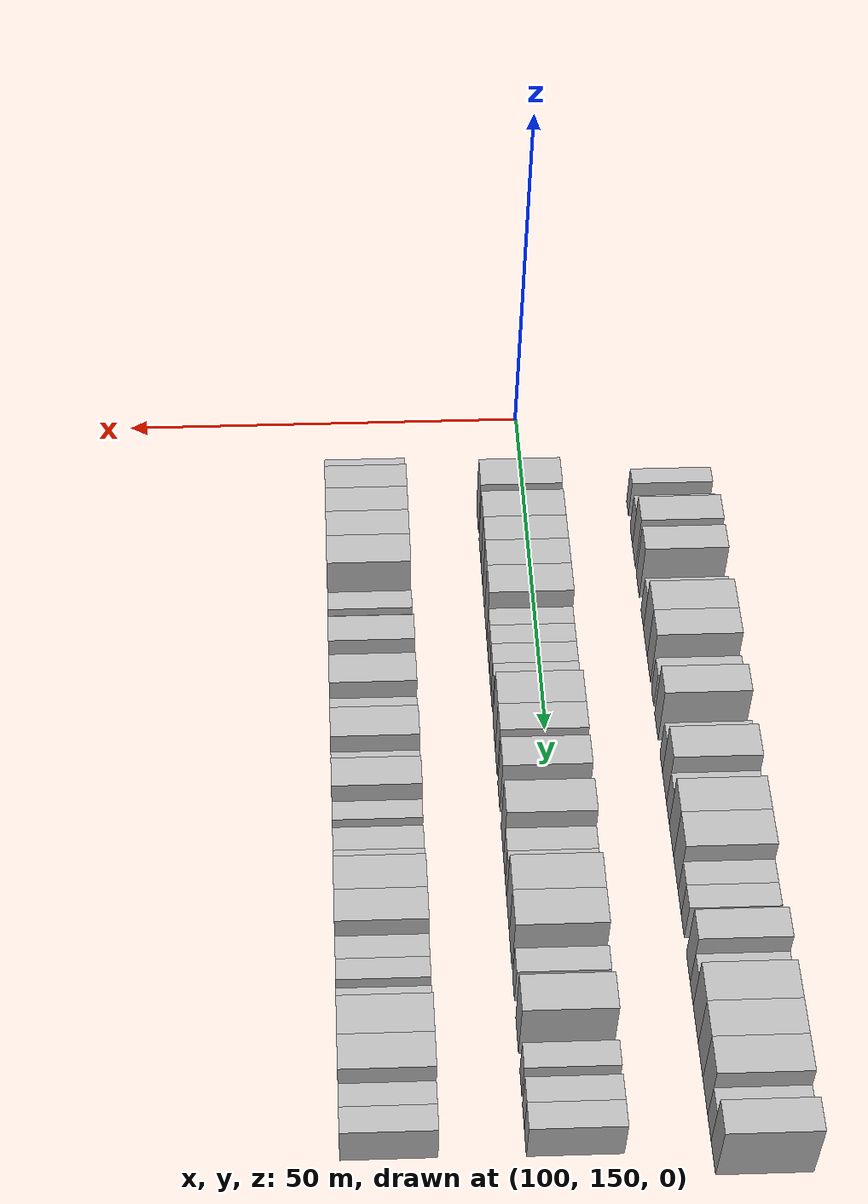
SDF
<sdf version="1.6">
 <world name="default">
  <model name="building_655">
   <static>1</static>
   <pose>82.0000 165.8984 0 0.000000 0.000000 0.000000</pose>
   <link name="link">
    <pose>0 0 3.00 0 0 0</pose>
    <collision name="collision"><geometry><box><size>10.0000 2.4593 6.0000</size></box></geometry></collision>
    <visual name="visual">
     <cast_shadows>0</cast_shadows>
     <geometry><box><size>10.0000 2.4593 6.0000</size></box></geometry>
     <material>
      <script>
       <uri>model://HANNAS_wall/materials/scripts</uri>
       <uri>model://HANNAS_wall/materials/textures</uri>
       <name>vrc/HANNAS_wall</name>
      </script>
     </material>
    </visual>
   </link>
  </model>
  <model name="building_656">
   <static>1</static>
   <pose>82.0000 170.5735 0 0.000000 0.000000 0.000000</pose>
   <link name="link">
    <pose>0 0 3.00 0 0 0</pose>
    <collision name="collision"><geometry><box><size>10.0000 2.8910 6.0000</size></box></geometry></collision>
    <visual name="visual">
     <cast_shadows>0</cast_shadows>
     <geometry><box><size>10.0000 2.8910 6.0000</size></box></geometry>
     <material>
      <script>
       <uri>model://HANNAS_wall/materials/scripts</uri>
       <uri>model://HANNAS_wall/materials/textures</uri>
       <name>vrc/HANNAS_wall</name>
      </script>
     </material>
    </visual>
   </link>
  </model>
  <model name="building_657">
   <static>1</static>
   <pose>82.0000 173.9270 0 0.000000 0.000000 0.000000</pose>
   <link name="link">
    <pose>0 0 4.50 0 0 0</pose>
    <collision name="collision"><geometry><box><size>10.0000 3.8159 9.0000</size></box></geometry></collision>
    <visual name="visual">
     <cast_shadows>0</cast_shadows>
     <geometry><box><size>10.0000 3.8159 9.0000</size></box></geometry>
     <material>
      <script>
       <uri>model://HANNAS_wall/materials/scripts</uri>
       <uri>model://HANNAS_wall/materials/textures</uri>
       <name>vrc/HANNAS_wall</name>
      </script>
     </material>
    </visual>
   </link>
  </model>
  <model name="building_658">
   <static>1</static>
   <pose>82.0000 178.6359 0 0.000000 0.000000 0.000000</pose>
   <link name="link">
    <pose>0 0 4.50 0 0 0</pose>
    <collision name="collision"><geometry><box><size>10.0000 3.6019 9.0000</size></box></geometry></collision>
    <visual name="visual">
     <cast_shadows>0</cast_shadows>
     <geometry><box><size>10.0000 3.6019 9.0000</size></box></geometry>
     <material>
      <script>
       <uri>model://HANNAS_wall/materials/scripts</uri>
       <uri>model://HANNAS_wall/materials/textures</uri>
       <name>vrc/HANNAS_wall</name>
      </script>
     </material>
    </visual>
   </link>
  </model>
  <model name="building_659">
   <static>1</static>
   <pose>82.0000 183.8973 0 0.000000 0.000000 0.000000</pose>
   <link name="link">
    <pose>0 0 3.00 0 0 0</pose>
    <collision name="collision"><geometry><box><size>10.0000 2.9209 6.0000</size></box></geometry></collision>
    <visual name="visual">
     <cast_shadows>0</cast_shadows>
     <geometry><box><size>10.0000 2.9209 6.0000</size></box></geometry>
     <material>
      <script>
       <uri>model://HANNAS_wall/materials/scripts</uri>
       <uri>model://HANNAS_wall/materials/textures</uri>
       <name>vrc/HANNAS_wall</name>
      </script>
     </material>
    </visual>
   </link>
  </model>
  <model name="building_660">
   <static>1</static>
   <pose>82.0000 187.5350 0 0.000000 0.000000 0.000000</pose>
   <link name="link">
    <pose>0 0 4.50 0 0 0</pose>
    <collision name="collision"><geometry><box><size>10.0000 4.3546 9.0000</size></box></geometry></collision>
    <visual name="visual">
     <cast_shadows>0</cast_shadows>
     <geometry><box><size>10.0000 4.3546 9.0000</size></box></geometry>
     <material>
      <script>
       <uri>model://HANNAS_wall/materials/scripts</uri>
       <uri>model://HANNAS_wall/materials/textures</uri>
       <name>vrc/HANNAS_wall</name>
      </script>
     </material>
    </visual>
   </link>
  </model>
  <model name="building_661">
   <static>1</static>
   <pose>82.0000 191.6063 0 0.000000 0.000000 0.000000</pose>
   <link name="link">
    <pose>0 0 4.50 0 0 0</pose>
    <collision name="collision"><geometry><box><size>10.0000 3.7879 9.0000</size></box></geometry></collision>
    <visual name="visual">
     <cast_shadows>0</cast_shadows>
     <geometry><box><size>10.0000 3.7879 9.0000</size></box></geometry>
     <material>
      <script>
       <uri>model://HANNAS_wall/materials/scripts</uri>
       <uri>model://HANNAS_wall/materials/textures</uri>
       <name>vrc/HANNAS_wall</name>
      </script>
     </material>
    </visual>
   </link>
  </model>
  <model name="building_662">
   <static>1</static>
   <pose>82.0000 195.7701 0 0.000000 0.000000 0.000000</pose>
   <link name="link">
    <pose>0 0 3.00 0 0 0</pose>
    <collision name="collision"><geometry><box><size>10.0000 2.5397 6.0000</size></box></geometry></collision>
    <visual name="visual">
     <cast_shadows>0</cast_shadows>
     <geometry><box><size>10.0000 2.5397 6.0000</size></box></geometry>
     <material>
      <script>
       <uri>model://HANNAS_wall/materials/scripts</uri>
       <uri>model://HANNAS_wall/materials/textures</uri>
       <name>vrc/HANNAS_wall</name>
      </script>
     </material>
    </visual>
   </link>
  </model>
  <model name="building_663">
   <static>1</static>
   <pose>82.0000 199.9631 0 0.000000 0.000000 0.000000</pose>
   <link name="link">
    <pose>0 0 4.50 0 0 0</pose>
    <collision name="collision"><geometry><box><size>10.0000 3.8463 9.0000</size></box></geometry></collision>
    <visual name="visual">
     <cast_shadows>0</cast_shadows>
     <geometry><box><size>10.0000 3.8463 9.0000</size></box></geometry>
     <material>
      <script>
       <uri>model://HANNAS_wall/materials/scripts</uri>
       <uri>model://HANNAS_wall/materials/textures</uri>
       <name>vrc/HANNAS_wall</name>
      </script>
     </material>
    </visual>
   </link>
  </model>
  <model name="building_664">
   <static>1</static>
   <pose>82.0000 205.2267 0 0.000000 0.000000 0.000000</pose>
   <link name="link">
    <pose>0 0 3.00 0 0 0</pose>
    <collision name="collision"><geometry><box><size>10.0000 2.6810 6.0000</size></box></geometry></collision>
    <visual name="visual">
     <cast_shadows>0</cast_shadows>
     <geometry><box><size>10.0000 2.6810 6.0000</size></box></geometry>
     <material>
      <script>
       <uri>model://HANNAS_wall/materials/scripts</uri>
       <uri>model://HANNAS_wall/materials/textures</uri>
       <name>vrc/HANNAS_wall</name>
      </script>
     </material>
    </visual>
   </link>
  </model>
  <model name="building_665">
   <static>1</static>
   <pose>82.0000 208.6943 0 0.000000 0.000000 0.000000</pose>
   <link name="link">
    <pose>0 0 4.50 0 0 0</pose>
    <collision name="collision"><geometry><box><size>10.0000 4.2542 9.0000</size></box></geometry></collision>
    <visual name="visual">
     <cast_shadows>0</cast_shadows>
     <geometry><box><size>10.0000 4.2542 9.0000</size></box></geometry>
     <material>
      <script>
       <uri>model://HANNAS_wall/materials/scripts</uri>
       <uri>model://HANNAS_wall/materials/textures</uri>
       <name>vrc/HANNAS_wall</name>
      </script>
     </material>
    </visual>
   </link>
  </model>
  <model name="building_666">
   <static>1</static>
   <pose>82.0000 212.2488 0 0.000000 0.000000 0.000000</pose>
   <link name="link">
    <pose>0 0 3.00 0 0 0</pose>
    <collision name="collision"><geometry><box><size>10.0000 2.8547 6.0000</size></box></geometry></collision>
    <visual name="visual">
     <cast_shadows>0</cast_shadows>
     <geometry><box><size>10.0000 2.8547 6.0000</size></box></geometry>
     <material>
      <script>
       <uri>model://HANNAS_wall/materials/scripts</uri>
       <uri>model://HANNAS_wall/materials/textures</uri>
       <name>vrc/HANNAS_wall</name>
      </script>
     </material>
    </visual>
   </link>
  </model>
  <model name="building_667">
   <static>1</static>
   <pose>82.0000 215.8715 0 0.000000 0.000000 0.000000</pose>
   <link name="link">
    <pose>0 0 4.50 0 0 0</pose>
    <collision name="collision"><geometry><box><size>10.0000 4.3908 9.0000</size></box></geometry></collision>
    <visual name="visual">
     <cast_shadows>0</cast_shadows>
     <geometry><box><size>10.0000 4.3908 9.0000</size></box></geometry>
     <material>
      <script>
       <uri>model://HANNAS_wall/materials/scripts</uri>
       <uri>model://HANNAS_wall/materials/textures</uri>
       <name>vrc/HANNAS_wall</name>
      </script>
     </material>
    </visual>
   </link>
  </model>
  <model name="building_668">
   <static>1</static>
   <pose>82.0000 220.3164 0 0.000000 0.000000 0.000000</pose>
   <link name="link">
    <pose>0 0 4.50 0 0 0</pose>
    <collision name="collision"><geometry><box><size>10.0000 4.4990 9.0000</size></box></geometry></collision>
    <visual name="visual">
     <cast_shadows>0</cast_shadows>
     <geometry><box><size>10.0000 4.4990 9.0000</size></box></geometry>
     <material>
      <script>
       <uri>model://HANNAS_wall/materials/scripts</uri>
       <uri>model://HANNAS_wall/materials/textures</uri>
       <name>vrc/HANNAS_wall</name>
      </script>
     </material>
    </visual>
   </link>
  </model>
  <model name="building_669">
   <static>1</static>
   <pose>82.0000 224.0597 0 0.000000 0.000000 0.000000</pose>
   <link name="link">
    <pose>0 0 3.00 0 0 0</pose>
    <collision name="collision"><geometry><box><size>10.0000 2.9876 6.0000</size></box></geometry></collision>
    <visual name="visual">
     <cast_shadows>0</cast_shadows>
     <geometry><box><size>10.0000 2.9876 6.0000</size></box></geometry>
     <material>
      <script>
       <uri>model://HANNAS_wall/materials/scripts</uri>
       <uri>model://HANNAS_wall/materials/textures</uri>
       <name>vrc/HANNAS_wall</name>
      </script>
     </material>
    </visual>
   </link>
  </model>
  <model name="building_670">
   <static>1</static>
   <pose>82.0000 227.0129 0 0.000000 0.000000 0.000000</pose>
   <link name="link">
    <pose>0 0 3.00 0 0 0</pose>
    <collision name="collision"><geometry><box><size>10.0000 2.9188 6.0000</size></box></geometry></collision>
    <visual name="visual">
     <cast_shadows>0</cast_shadows>
     <geometry><box><size>10.0000 2.9188 6.0000</size></box></geometry>
     <material>
      <script>
       <uri>model://HANNAS_wall/materials/scripts</uri>
       <uri>model://HANNAS_wall/materials/textures</uri>
       <name>vrc/HANNAS_wall</name>
      </script>
     </material>
    </visual>
   </link>
  </model>
  <model name="building_671">
   <static>1</static>
   <pose>82.0000 232.2809 0 0.000000 0.000000 0.000000</pose>
   <link name="link">
    <pose>0 0 4.50 0 0 0</pose>
    <collision name="collision"><geometry><box><size>10.0000 3.6173 9.0000</size></box></geometry></collision>
    <visual name="visual">
     <cast_shadows>0</cast_shadows>
     <geometry><box><size>10.0000 3.6173 9.0000</size></box></geometry>
     <material>
      <script>
       <uri>model://HANNAS_wall/materials/scripts</uri>
       <uri>model://HANNAS_wall/materials/textures</uri>
       <name>vrc/HANNAS_wall</name>
      </script>
     </material>
    </visual>
   </link>
  </model>
  <model name="building_672">
   <static>1</static>
   <pose>82.0000 235.4722 0 0.000000 0.000000 0.000000</pose>
   <link name="link">
    <pose>0 0 3.00 0 0 0</pose>
    <collision name="collision"><geometry><box><size>10.0000 2.7652 6.0000</size></box></geometry></collision>
    <visual name="visual">
     <cast_shadows>0</cast_shadows>
     <geometry><box><size>10.0000 2.7652 6.0000</size></box></geometry>
     <material>
      <script>
       <uri>model://HANNAS_wall/materials/scripts</uri>
       <uri>model://HANNAS_wall/materials/textures</uri>
       <name>vrc/HANNAS_wall</name>
      </script>
     </material>
    </visual>
   </link>
  </model>
  <model name="building_673">
   <static>1</static>
   <pose>82.0000 239.1030 0 0.000000 0.000000 0.000000</pose>
   <link name="link">
    <pose>0 0 4.50 0 0 0</pose>
    <collision name="collision"><geometry><box><size>10.0000 4.4964 9.0000</size></box></geometry></collision>
    <visual name="visual">
     <cast_shadows>0</cast_shadows>
     <geometry><box><size>10.0000 4.4964 9.0000</size></box></geometry>
     <material>
      <script>
       <uri>model://HANNAS_wall/materials/scripts</uri>
       <uri>model://HANNAS_wall/materials/textures</uri>
       <name>vrc/HANNAS_wall</name>
      </script>
     </material>
    </visual>
   </link>
  </model>
  <model name="building_674">
   <static>1</static>
   <pose>82.0000 243.4031 0 0.000000 0.000000 0.000000</pose>
   <link name="link">
    <pose>0 0 4.50 0 0 0</pose>
    <collision name="collision"><geometry><box><size>10.0000 4.1038 9.0000</size></box></geometry></collision>
    <visual name="visual">
     <cast_shadows>0</cast_shadows>
     <geometry><box><size>10.0000 4.1038 9.0000</size></box></geometry>
     <material>
      <script>
       <uri>model://HANNAS_wall/materials/scripts</uri>
       <uri>model://HANNAS_wall/materials/textures</uri>
       <name>vrc/HANNAS_wall</name>
      </script>
     </material>
    </visual>
   </link>
  </model>
  <model name="building_675">
   <static>1</static>
   <pose>82.0000 247.5528 0 0.000000 0.000000 0.000000</pose>
   <link name="link">
    <pose>0 0 4.50 0 0 0</pose>
    <collision name="collision"><geometry><box><size>10.0000 4.1956 9.0000</size></box></geometry></collision>
    <visual name="visual">
     <cast_shadows>0</cast_shadows>
     <geometry><box><size>10.0000 4.1956 9.0000</size></box></geometry>
     <material>
      <script>
       <uri>model://HANNAS_wall/materials/scripts</uri>
       <uri>model://HANNAS_wall/materials/textures</uri>
       <name>vrc/HANNAS_wall</name>
      </script>
     </material>
    </visual>
   </link>
  </model>
  <model name="building_676">
   <static>1</static>
   <pose>82.0000 251.0931 0 0.000000 0.000000 0.000000</pose>
   <link name="link">
    <pose>0 0 3.00 0 0 0</pose>
    <collision name="collision"><geometry><box><size>10.0000 2.8849 6.0000</size></box></geometry></collision>
    <visual name="visual">
     <cast_shadows>0</cast_shadows>
     <geometry><box><size>10.0000 2.8849 6.0000</size></box></geometry>
     <material>
      <script>
       <uri>model://HANNAS_wall/materials/scripts</uri>
       <uri>model://HANNAS_wall/materials/textures</uri>
       <name>vrc/HANNAS_wall</name>
      </script>
     </material>
    </visual>
   </link>
  </model>
  <model name="building_677">
   <static>1</static>
   <pose>82.0000 254.3932 0 0.000000 0.000000 0.000000</pose>
   <link name="link">
    <pose>0 0 4.50 0 0 0</pose>
    <collision name="collision"><geometry><box><size>10.0000 3.7154 9.0000</size></box></geometry></collision>
    <visual name="visual">
     <cast_shadows>0</cast_shadows>
     <geometry><box><size>10.0000 3.7154 9.0000</size></box></geometry>
     <material>
      <script>
       <uri>model://HANNAS_wall/materials/scripts</uri>
       <uri>model://HANNAS_wall/materials/textures</uri>
       <name>vrc/HANNAS_wall</name>
      </script>
     </material>
    </visual>
   </link>
  </model>
  <model name="building_823">
   <static>1</static>
   <pose>101.0000 167.3357 0 0.000000 0.000000 0.000000</pose>
   <link name="link">
    <pose>0 0 4.50 0 0 0</pose>
    <collision name="collision"><geometry><box><size>10.0000 4.2379 9.0000</size></box></geometry></collision>
    <visual name="visual">
     <cast_shadows>0</cast_shadows>
     <geometry><box><size>10.0000 4.2379 9.0000</size></box></geometry>
     <material>
      <script>
       <uri>model://HANNAS_wall/materials/scripts</uri>
       <uri>model://HANNAS_wall/materials/textures</uri>
       <name>vrc/HANNAS_wall</name>
      </script>
     </material>
    </visual>
   </link>
  </model>
  <model name="building_824">
   <static>1</static>
   <pose>101.0000 172.5386 0 0.000000 0.000000 0.000000</pose>
   <link name="link">
    <pose>0 0 4.50 0 0 0</pose>
    <collision name="collision"><geometry><box><size>10.0000 4.1678 9.0000</size></box></geometry></collision>
    <visual name="visual">
     <cast_shadows>0</cast_shadows>
     <geometry><box><size>10.0000 4.1678 9.0000</size></box></geometry>
     <material>
      <script>
       <uri>model://HANNAS_wall/materials/scripts</uri>
       <uri>model://HANNAS_wall/materials/textures</uri>
       <name>vrc/HANNAS_wall</name>
      </script>
     </material>
    </visual>
   </link>
  </model>
  <model name="building_825">
   <static>1</static>
   <pose>101.0000 176.4904 0 0.000000 0.000000 0.000000</pose>
   <link name="link">
    <pose>0 0 4.50 0 0 0</pose>
    <collision name="collision"><geometry><box><size>10.0000 3.7358 9.0000</size></box></geometry></collision>
    <visual name="visual">
     <cast_shadows>0</cast_shadows>
     <geometry><box><size>10.0000 3.7358 9.0000</size></box></geometry>
     <material>
      <script>
       <uri>model://HANNAS_wall/materials/scripts</uri>
       <uri>model://HANNAS_wall/materials/textures</uri>
       <name>vrc/HANNAS_wall</name>
      </script>
     </material>
    </visual>
   </link>
  </model>
  <model name="building_826">
   <static>1</static>
   <pose>101.0000 180.3145 0 0.000000 0.000000 0.000000</pose>
   <link name="link">
    <pose>0 0 4.50 0 0 0</pose>
    <collision name="collision"><geometry><box><size>10.0000 3.9123 9.0000</size></box></geometry></collision>
    <visual name="visual">
     <cast_shadows>0</cast_shadows>
     <geometry><box><size>10.0000 3.9123 9.0000</size></box></geometry>
     <material>
      <script>
       <uri>model://HANNAS_wall/materials/scripts</uri>
       <uri>model://HANNAS_wall/materials/textures</uri>
       <name>vrc/HANNAS_wall</name>
      </script>
     </material>
    </visual>
   </link>
  </model>
  <model name="building_827">
   <static>1</static>
   <pose>101.0000 184.3753 0 0.000000 0.000000 0.000000</pose>
   <link name="link">
    <pose>0 0 4.50 0 0 0</pose>
    <collision name="collision"><geometry><box><size>10.0000 4.2092 9.0000</size></box></geometry></collision>
    <visual name="visual">
     <cast_shadows>0</cast_shadows>
     <geometry><box><size>10.0000 4.2092 9.0000</size></box></geometry>
     <material>
      <script>
       <uri>model://HANNAS_wall/materials/scripts</uri>
       <uri>model://HANNAS_wall/materials/textures</uri>
       <name>vrc/HANNAS_wall</name>
      </script>
     </material>
    </visual>
   </link>
  </model>
  <model name="building_828">
   <static>1</static>
   <pose>101.0000 187.7420 0 0.000000 0.000000 0.000000</pose>
   <link name="link">
    <pose>0 0 3.00 0 0 0</pose>
    <collision name="collision"><geometry><box><size>10.0000 2.5242 6.0000</size></box></geometry></collision>
    <visual name="visual">
     <cast_shadows>0</cast_shadows>
     <geometry><box><size>10.0000 2.5242 6.0000</size></box></geometry>
     <material>
      <script>
       <uri>model://HANNAS_wall/materials/scripts</uri>
       <uri>model://HANNAS_wall/materials/textures</uri>
       <name>vrc/HANNAS_wall</name>
      </script>
     </material>
    </visual>
   </link>
  </model>
  <model name="building_829">
   <static>1</static>
   <pose>101.0000 190.3833 0 0.000000 0.000000 0.000000</pose>
   <link name="link">
    <pose>0 0 3.00 0 0 0</pose>
    <collision name="collision"><geometry><box><size>10.0000 2.7584 6.0000</size></box></geometry></collision>
    <visual name="visual">
     <cast_shadows>0</cast_shadows>
     <geometry><box><size>10.0000 2.7584 6.0000</size></box></geometry>
     <material>
      <script>
       <uri>model://HANNAS_wall/materials/scripts</uri>
       <uri>model://HANNAS_wall/materials/textures</uri>
       <name>vrc/HANNAS_wall</name>
      </script>
     </material>
    </visual>
   </link>
  </model>
  <model name="building_830">
   <static>1</static>
   <pose>101.0000 193.2138 0 0.000000 0.000000 0.000000</pose>
   <link name="link">
    <pose>0 0 3.00 0 0 0</pose>
    <collision name="collision"><geometry><box><size>10.0000 2.9027 6.0000</size></box></geometry></collision>
    <visual name="visual">
     <cast_shadows>0</cast_shadows>
     <geometry><box><size>10.0000 2.9027 6.0000</size></box></geometry>
     <material>
      <script>
       <uri>model://HANNAS_wall/materials/scripts</uri>
       <uri>model://HANNAS_wall/materials/textures</uri>
       <name>vrc/HANNAS_wall</name>
      </script>
     </material>
    </visual>
   </link>
  </model>
  <model name="building_831">
   <static>1</static>
   <pose>101.0000 195.9693 0 0.000000 0.000000 0.000000</pose>
   <link name="link">
    <pose>0 0 3.00 0 0 0</pose>
    <collision name="collision"><geometry><box><size>10.0000 2.6083 6.0000</size></box></geometry></collision>
    <visual name="visual">
     <cast_shadows>0</cast_shadows>
     <geometry><box><size>10.0000 2.6083 6.0000</size></box></geometry>
     <material>
      <script>
       <uri>model://HANNAS_wall/materials/scripts</uri>
       <uri>model://HANNAS_wall/materials/textures</uri>
       <name>vrc/HANNAS_wall</name>
      </script>
     </material>
    </visual>
   </link>
  </model>
  <model name="building_832">
   <static>1</static>
   <pose>101.0000 200.5146 0 0.000000 0.000000 0.000000</pose>
   <link name="link">
    <pose>0 0 4.50 0 0 0</pose>
    <collision name="collision"><geometry><box><size>10.0000 4.4824 9.0000</size></box></geometry></collision>
    <visual name="visual">
     <cast_shadows>0</cast_shadows>
     <geometry><box><size>10.0000 4.4824 9.0000</size></box></geometry>
     <material>
      <script>
       <uri>model://HANNAS_wall/materials/scripts</uri>
       <uri>model://HANNAS_wall/materials/textures</uri>
       <name>vrc/HANNAS_wall</name>
      </script>
     </material>
    </visual>
   </link>
  </model>
  <model name="building_833">
   <static>1</static>
   <pose>101.0000 204.5877 0 0.000000 0.000000 0.000000</pose>
   <link name="link">
    <pose>0 0 4.50 0 0 0</pose>
    <collision name="collision"><geometry><box><size>10.0000 3.6638 9.0000</size></box></geometry></collision>
    <visual name="visual">
     <cast_shadows>0</cast_shadows>
     <geometry><box><size>10.0000 3.6638 9.0000</size></box></geometry>
     <material>
      <script>
       <uri>model://HANNAS_wall/materials/scripts</uri>
       <uri>model://HANNAS_wall/materials/textures</uri>
       <name>vrc/HANNAS_wall</name>
      </script>
     </material>
    </visual>
   </link>
  </model>
  <model name="building_834">
   <static>1</static>
   <pose>101.0000 209.3695 0 0.000000 0.000000 0.000000</pose>
   <link name="link">
    <pose>0 0 4.50 0 0 0</pose>
    <collision name="collision"><geometry><box><size>10.0000 3.8999 9.0000</size></box></geometry></collision>
    <visual name="visual">
     <cast_shadows>0</cast_shadows>
     <geometry><box><size>10.0000 3.8999 9.0000</size></box></geometry>
     <material>
      <script>
       <uri>model://HANNAS_wall/materials/scripts</uri>
       <uri>model://HANNAS_wall/materials/textures</uri>
       <name>vrc/HANNAS_wall</name>
      </script>
     </material>
    </visual>
   </link>
  </model>
  <model name="building_835">
   <static>1</static>
   <pose>101.0000 215.4580 0 0.000000 0.000000 0.000000</pose>
   <link name="link">
    <pose>0 0 4.50 0 0 0</pose>
    <collision name="collision"><geometry><box><size>10.0000 4.2771 9.0000</size></box></geometry></collision>
    <visual name="visual">
     <cast_shadows>0</cast_shadows>
     <geometry><box><size>10.0000 4.2771 9.0000</size></box></geometry>
     <material>
      <script>
       <uri>model://HANNAS_wall/materials/scripts</uri>
       <uri>model://HANNAS_wall/materials/textures</uri>
       <name>vrc/HANNAS_wall</name>
      </script>
     </material>
    </visual>
   </link>
  </model>
  <model name="building_836">
   <static>1</static>
   <pose>101.0000 219.0809 0 0.000000 0.000000 0.000000</pose>
   <link name="link">
    <pose>0 0 3.00 0 0 0</pose>
    <collision name="collision"><geometry><box><size>10.0000 2.9687 6.0000</size></box></geometry></collision>
    <visual name="visual">
     <cast_shadows>0</cast_shadows>
     <geometry><box><size>10.0000 2.9687 6.0000</size></box></geometry>
     <material>
      <script>
       <uri>model://HANNAS_wall/materials/scripts</uri>
       <uri>model://HANNAS_wall/materials/textures</uri>
       <name>vrc/HANNAS_wall</name>
      </script>
     </material>
    </visual>
   </link>
  </model>
  <model name="building_837">
   <static>1</static>
   <pose>101.0000 221.7885 0 0.000000 0.000000 0.000000</pose>
   <link name="link">
    <pose>0 0 3.00 0 0 0</pose>
    <collision name="collision"><geometry><box><size>10.0000 2.4465 6.0000</size></box></geometry></collision>
    <visual name="visual">
     <cast_shadows>0</cast_shadows>
     <geometry><box><size>10.0000 2.4465 6.0000</size></box></geometry>
     <material>
      <script>
       <uri>model://HANNAS_wall/materials/scripts</uri>
       <uri>model://HANNAS_wall/materials/textures</uri>
       <name>vrc/HANNAS_wall</name>
      </script>
     </material>
    </visual>
   </link>
  </model>
  <model name="building_838">
   <static>1</static>
   <pose>101.0000 225.2068 0 0.000000 0.000000 0.000000</pose>
   <link name="link">
    <pose>0 0 4.50 0 0 0</pose>
    <collision name="collision"><geometry><box><size>10.0000 4.3901 9.0000</size></box></geometry></collision>
    <visual name="visual">
     <cast_shadows>0</cast_shadows>
     <geometry><box><size>10.0000 4.3901 9.0000</size></box></geometry>
     <material>
      <script>
       <uri>model://HANNAS_wall/materials/scripts</uri>
       <uri>model://HANNAS_wall/materials/textures</uri>
       <name>vrc/HANNAS_wall</name>
      </script>
     </material>
    </visual>
   </link>
  </model>
  <model name="building_839">
   <static>1</static>
   <pose>101.0000 229.5811 0 0.000000 0.000000 0.000000</pose>
   <link name="link">
    <pose>0 0 4.50 0 0 0</pose>
    <collision name="collision"><geometry><box><size>10.0000 4.3585 9.0000</size></box></geometry></collision>
    <visual name="visual">
     <cast_shadows>0</cast_shadows>
     <geometry><box><size>10.0000 4.3585 9.0000</size></box></geometry>
     <material>
      <script>
       <uri>model://HANNAS_wall/materials/scripts</uri>
       <uri>model://HANNAS_wall/materials/textures</uri>
       <name>vrc/HANNAS_wall</name>
      </script>
     </material>
    </visual>
   </link>
  </model>
  <model name="building_840">
   <static>1</static>
   <pose>101.0000 234.2176 0 0.000000 0.000000 0.000000</pose>
   <link name="link">
    <pose>0 0 3.00 0 0 0</pose>
    <collision name="collision"><geometry><box><size>10.0000 2.9144 6.0000</size></box></geometry></collision>
    <visual name="visual">
     <cast_shadows>0</cast_shadows>
     <geometry><box><size>10.0000 2.9144 6.0000</size></box></geometry>
     <material>
      <script>
       <uri>model://HANNAS_wall/materials/scripts</uri>
       <uri>model://HANNAS_wall/materials/textures</uri>
       <name>vrc/HANNAS_wall</name>
      </script>
     </material>
    </visual>
   </link>
  </model>
  <model name="building_841">
   <static>1</static>
   <pose>101.0000 239.8007 0 0.000000 0.000000 0.000000</pose>
   <link name="link">
    <pose>0 0 4.50 0 0 0</pose>
    <collision name="collision"><geometry><box><size>10.0000 4.2518 9.0000</size></box></geometry></collision>
    <visual name="visual">
     <cast_shadows>0</cast_shadows>
     <geometry><box><size>10.0000 4.2518 9.0000</size></box></geometry>
     <material>
      <script>
       <uri>model://HANNAS_wall/materials/scripts</uri>
       <uri>model://HANNAS_wall/materials/textures</uri>
       <name>vrc/HANNAS_wall</name>
      </script>
     </material>
    </visual>
   </link>
  </model>
  <model name="building_842">
   <static>1</static>
   <pose>101.0000 245.3694 0 0.000000 0.000000 0.000000</pose>
   <link name="link">
    <pose>0 0 3.00 0 0 0</pose>
    <collision name="collision"><geometry><box><size>10.0000 2.8856 6.0000</size></box></geometry></collision>
    <visual name="visual">
     <cast_shadows>0</cast_shadows>
     <geometry><box><size>10.0000 2.8856 6.0000</size></box></geometry>
     <material>
      <script>
       <uri>model://HANNAS_wall/materials/scripts</uri>
       <uri>model://HANNAS_wall/materials/textures</uri>
       <name>vrc/HANNAS_wall</name>
      </script>
     </material>
    </visual>
   </link>
  </model>
  <model name="building_843">
   <static>1</static>
   <pose>101.0000 249.2357 0 0.000000 0.000000 0.000000</pose>
   <link name="link">
    <pose>0 0 3.00 0 0 0</pose>
    <collision name="collision"><geometry><box><size>10.0000 2.8469 6.0000</size></box></geometry></collision>
    <visual name="visual">
     <cast_shadows>0</cast_shadows>
     <geometry><box><size>10.0000 2.8469 6.0000</size></box></geometry>
     <material>
      <script>
       <uri>model://HANNAS_wall/materials/scripts</uri>
       <uri>model://HANNAS_wall/materials/textures</uri>
       <name>vrc/HANNAS_wall</name>
      </script>
     </material>
    </visual>
   </link>
  </model>
  <model name="building_844">
   <static>1</static>
   <pose>101.0000 252.1398 0 0.000000 0.000000 0.000000</pose>
   <link name="link">
    <pose>0 0 3.00 0 0 0</pose>
    <collision name="collision"><geometry><box><size>10.0000 2.9613 6.0000</size></box></geometry></collision>
    <visual name="visual">
     <cast_shadows>0</cast_shadows>
     <geometry><box><size>10.0000 2.9613 6.0000</size></box></geometry>
     <material>
      <script>
       <uri>model://HANNAS_wall/materials/scripts</uri>
       <uri>model://HANNAS_wall/materials/textures</uri>
       <name>vrc/HANNAS_wall</name>
      </script>
     </material>
    </visual>
   </link>
  </model>
  <model name="building_1004">
   <static>1</static>
   <pose>120.0000 163.3260 0 0.000000 0.000000 0.000000</pose>
   <link name="link">
    <pose>0 0 3.00 0 0 0</pose>
    <collision name="collision"><geometry><box><size>10.0000 2.7939 6.0000</size></box></geometry></collision>
    <visual name="visual">
     <cast_shadows>0</cast_shadows>
     <geometry><box><size>10.0000 2.7939 6.0000</size></box></geometry>
     <material>
      <script>
       <uri>model://HANNAS_wall/materials/scripts</uri>
       <uri>model://HANNAS_wall/materials/textures</uri>
       <name>vrc/HANNAS_wall</name>
      </script>
     </material>
    </visual>
   </link>
  </model>
  <model name="building_1005">
   <static>1</static>
   <pose>120.0000 167.5364 0 0.000000 0.000000 0.000000</pose>
   <link name="link">
    <pose>0 0 4.50 0 0 0</pose>
    <collision name="collision"><geometry><box><size>10.0000 3.6268 9.0000</size></box></geometry></collision>
    <visual name="visual">
     <cast_shadows>0</cast_shadows>
     <geometry><box><size>10.0000 3.6268 9.0000</size></box></geometry>
     <material>
      <script>
       <uri>model://HANNAS_wall/materials/scripts</uri>
       <uri>model://HANNAS_wall/materials/textures</uri>
       <name>vrc/HANNAS_wall</name>
      </script>
     </material>
    </visual>
   </link>
  </model>
  <model name="building_1006">
   <static>1</static>
   <pose>120.0000 171.2504 0 0.000000 0.000000 0.000000</pose>
   <link name="link">
    <pose>0 0 4.50 0 0 0</pose>
    <collision name="collision"><geometry><box><size>10.0000 3.8013 9.0000</size></box></geometry></collision>
    <visual name="visual">
     <cast_shadows>0</cast_shadows>
     <geometry><box><size>10.0000 3.8013 9.0000</size></box></geometry>
     <material>
      <script>
       <uri>model://HANNAS_wall/materials/scripts</uri>
       <uri>model://HANNAS_wall/materials/textures</uri>
       <name>vrc/HANNAS_wall</name>
      </script>
     </material>
    </visual>
   </link>
  </model>
  <model name="building_1007">
   <static>1</static>
   <pose>120.0000 175.0822 0 0.000000 0.000000 0.000000</pose>
   <link name="link">
    <pose>0 0 4.50 0 0 0</pose>
    <collision name="collision"><geometry><box><size>10.0000 3.8623 9.0000</size></box></geometry></collision>
    <visual name="visual">
     <cast_shadows>0</cast_shadows>
     <geometry><box><size>10.0000 3.8623 9.0000</size></box></geometry>
     <material>
      <script>
       <uri>model://HANNAS_wall/materials/scripts</uri>
       <uri>model://HANNAS_wall/materials/textures</uri>
       <name>vrc/HANNAS_wall</name>
      </script>
     </material>
    </visual>
   </link>
  </model>
  <model name="building_1008">
   <static>1</static>
   <pose>120.0000 179.1979 0 0.000000 0.000000 0.000000</pose>
   <link name="link">
    <pose>0 0 4.50 0 0 0</pose>
    <collision name="collision"><geometry><box><size>10.0000 4.3691 9.0000</size></box></geometry></collision>
    <visual name="visual">
     <cast_shadows>0</cast_shadows>
     <geometry><box><size>10.0000 4.3691 9.0000</size></box></geometry>
     <material>
      <script>
       <uri>model://HANNAS_wall/materials/scripts</uri>
       <uri>model://HANNAS_wall/materials/textures</uri>
       <name>vrc/HANNAS_wall</name>
      </script>
     </material>
    </visual>
   </link>
  </model>
  <model name="building_1009">
   <static>1</static>
   <pose>120.0000 184.6997 0 0.000000 0.000000 0.000000</pose>
   <link name="link">
    <pose>0 0 3.00 0 0 0</pose>
    <collision name="collision"><geometry><box><size>10.0000 2.6345 6.0000</size></box></geometry></collision>
    <visual name="visual">
     <cast_shadows>0</cast_shadows>
     <geometry><box><size>10.0000 2.6345 6.0000</size></box></geometry>
     <material>
      <script>
       <uri>model://HANNAS_wall/materials/scripts</uri>
       <uri>model://HANNAS_wall/materials/textures</uri>
       <name>vrc/HANNAS_wall</name>
      </script>
     </material>
    </visual>
   </link>
  </model>
  <model name="building_1010">
   <static>1</static>
   <pose>120.0000 188.2547 0 0.000000 0.000000 0.000000</pose>
   <link name="link">
    <pose>0 0 3.00 0 0 0</pose>
    <collision name="collision"><geometry><box><size>10.0000 2.4757 6.0000</size></box></geometry></collision>
    <visual name="visual">
     <cast_shadows>0</cast_shadows>
     <geometry><box><size>10.0000 2.4757 6.0000</size></box></geometry>
     <material>
      <script>
       <uri>model://HANNAS_wall/materials/scripts</uri>
       <uri>model://HANNAS_wall/materials/textures</uri>
       <name>vrc/HANNAS_wall</name>
      </script>
     </material>
    </visual>
   </link>
  </model>
  <model name="building_1011">
   <static>1</static>
   <pose>120.0000 191.3037 0 0.000000 0.000000 0.000000</pose>
   <link name="link">
    <pose>0 0 4.50 0 0 0</pose>
    <collision name="collision"><geometry><box><size>10.0000 3.6222 9.0000</size></box></geometry></collision>
    <visual name="visual">
     <cast_shadows>0</cast_shadows>
     <geometry><box><size>10.0000 3.6222 9.0000</size></box></geometry>
     <material>
      <script>
       <uri>model://HANNAS_wall/materials/scripts</uri>
       <uri>model://HANNAS_wall/materials/textures</uri>
       <name>vrc/HANNAS_wall</name>
      </script>
     </material>
    </visual>
   </link>
  </model>
  <model name="building_1012">
   <static>1</static>
   <pose>120.0000 197.1499 0 0.000000 0.000000 0.000000</pose>
   <link name="link">
    <pose>0 0 4.50 0 0 0</pose>
    <collision name="collision"><geometry><box><size>10.0000 4.0701 9.0000</size></box></geometry></collision>
    <visual name="visual">
     <cast_shadows>0</cast_shadows>
     <geometry><box><size>10.0000 4.0701 9.0000</size></box></geometry>
     <material>
      <script>
       <uri>model://HANNAS_wall/materials/scripts</uri>
       <uri>model://HANNAS_wall/materials/textures</uri>
       <name>vrc/HANNAS_wall</name>
      </script>
     </material>
    </visual>
   </link>
  </model>
  <model name="building_1013">
   <static>1</static>
   <pose>120.0000 200.4327 0 0.000000 0.000000 0.000000</pose>
   <link name="link">
    <pose>0 0 3.00 0 0 0</pose>
    <collision name="collision"><geometry><box><size>10.0000 2.4955 6.0000</size></box></geometry></collision>
    <visual name="visual">
     <cast_shadows>0</cast_shadows>
     <geometry><box><size>10.0000 2.4955 6.0000</size></box></geometry>
     <material>
      <script>
       <uri>model://HANNAS_wall/materials/scripts</uri>
       <uri>model://HANNAS_wall/materials/textures</uri>
       <name>vrc/HANNAS_wall</name>
      </script>
     </material>
    </visual>
   </link>
  </model>
  <model name="building_1014">
   <static>1</static>
   <pose>120.0000 204.7116 0 0.000000 0.000000 0.000000</pose>
   <link name="link">
    <pose>0 0 4.50 0 0 0</pose>
    <collision name="collision"><geometry><box><size>10.0000 4.0623 9.0000</size></box></geometry></collision>
    <visual name="visual">
     <cast_shadows>0</cast_shadows>
     <geometry><box><size>10.0000 4.0623 9.0000</size></box></geometry>
     <material>
      <script>
       <uri>model://HANNAS_wall/materials/scripts</uri>
       <uri>model://HANNAS_wall/materials/textures</uri>
       <name>vrc/HANNAS_wall</name>
      </script>
     </material>
    </visual>
   </link>
  </model>
  <model name="building_1015">
   <static>1</static>
   <pose>120.0000 208.2157 0 0.000000 0.000000 0.000000</pose>
   <link name="link">
    <pose>0 0 3.00 0 0 0</pose>
    <collision name="collision"><geometry><box><size>10.0000 2.9458 6.0000</size></box></geometry></collision>
    <visual name="visual">
     <cast_shadows>0</cast_shadows>
     <geometry><box><size>10.0000 2.9458 6.0000</size></box></geometry>
     <material>
      <script>
       <uri>model://HANNAS_wall/materials/scripts</uri>
       <uri>model://HANNAS_wall/materials/textures</uri>
       <name>vrc/HANNAS_wall</name>
      </script>
     </material>
    </visual>
   </link>
  </model>
  <model name="building_1016">
   <static>1</static>
   <pose>120.0000 211.5646 0 0.000000 0.000000 0.000000</pose>
   <link name="link">
    <pose>0 0 4.50 0 0 0</pose>
    <collision name="collision"><geometry><box><size>10.0000 3.7520 9.0000</size></box></geometry></collision>
    <visual name="visual">
     <cast_shadows>0</cast_shadows>
     <geometry><box><size>10.0000 3.7520 9.0000</size></box></geometry>
     <material>
      <script>
       <uri>model://HANNAS_wall/materials/scripts</uri>
       <uri>model://HANNAS_wall/materials/textures</uri>
       <name>vrc/HANNAS_wall</name>
      </script>
     </material>
    </visual>
   </link>
  </model>
  <model name="building_1017">
   <static>1</static>
   <pose>120.0000 214.6643 0 0.000000 0.000000 0.000000</pose>
   <link name="link">
    <pose>0 0 3.00 0 0 0</pose>
    <collision name="collision"><geometry><box><size>10.0000 2.4473 6.0000</size></box></geometry></collision>
    <visual name="visual">
     <cast_shadows>0</cast_shadows>
     <geometry><box><size>10.0000 2.4473 6.0000</size></box></geometry>
     <material>
      <script>
       <uri>model://HANNAS_wall/materials/scripts</uri>
       <uri>model://HANNAS_wall/materials/textures</uri>
       <name>vrc/HANNAS_wall</name>
      </script>
     </material>
    </visual>
   </link>
  </model>
  <model name="building_1018">
   <static>1</static>
   <pose>120.0000 218.3798 0 0.000000 0.000000 0.000000</pose>
   <link name="link">
    <pose>0 0 3.00 0 0 0</pose>
    <collision name="collision"><geometry><box><size>10.0000 2.9837 6.0000</size></box></geometry></collision>
    <visual name="visual">
     <cast_shadows>0</cast_shadows>
     <geometry><box><size>10.0000 2.9837 6.0000</size></box></geometry>
     <material>
      <script>
       <uri>model://HANNAS_wall/materials/scripts</uri>
       <uri>model://HANNAS_wall/materials/textures</uri>
       <name>vrc/HANNAS_wall</name>
      </script>
     </material>
    </visual>
   </link>
  </model>
  <model name="building_1019">
   <static>1</static>
   <pose>120.0000 221.2144 0 0.000000 0.000000 0.000000</pose>
   <link name="link">
    <pose>0 0 3.00 0 0 0</pose>
    <collision name="collision"><geometry><box><size>10.0000 2.6855 6.0000</size></box></geometry></collision>
    <visual name="visual">
     <cast_shadows>0</cast_shadows>
     <geometry><box><size>10.0000 2.6855 6.0000</size></box></geometry>
     <material>
      <script>
       <uri>model://HANNAS_wall/materials/scripts</uri>
       <uri>model://HANNAS_wall/materials/textures</uri>
       <name>vrc/HANNAS_wall</name>
      </script>
     </material>
    </visual>
   </link>
  </model>
  <model name="building_1020">
   <static>1</static>
   <pose>120.0000 224.6488 0 0.000000 0.000000 0.000000</pose>
   <link name="link">
    <pose>0 0 4.50 0 0 0</pose>
    <collision name="collision"><geometry><box><size>10.0000 4.1834 9.0000</size></box></geometry></collision>
    <visual name="visual">
     <cast_shadows>0</cast_shadows>
     <geometry><box><size>10.0000 4.1834 9.0000</size></box></geometry>
     <material>
      <script>
       <uri>model://HANNAS_wall/materials/scripts</uri>
       <uri>model://HANNAS_wall/materials/textures</uri>
       <name>vrc/HANNAS_wall</name>
      </script>
     </material>
    </visual>
   </link>
  </model>
  <model name="building_1021">
   <static>1</static>
   <pose>120.0000 228.7118 0 0.000000 0.000000 0.000000</pose>
   <link name="link">
    <pose>0 0 4.50 0 0 0</pose>
    <collision name="collision"><geometry><box><size>10.0000 3.9425 9.0000</size></box></geometry></collision>
    <visual name="visual">
     <cast_shadows>0</cast_shadows>
     <geometry><box><size>10.0000 3.9425 9.0000</size></box></geometry>
     <material>
      <script>
       <uri>model://HANNAS_wall/materials/scripts</uri>
       <uri>model://HANNAS_wall/materials/textures</uri>
       <name>vrc/HANNAS_wall</name>
      </script>
     </material>
    </visual>
   </link>
  </model>
  <model name="building_1022">
   <static>1</static>
   <pose>120.0000 232.0606 0 0.000000 0.000000 0.000000</pose>
   <link name="link">
    <pose>0 0 3.00 0 0 0</pose>
    <collision name="collision"><geometry><box><size>10.0000 2.7551 6.0000</size></box></geometry></collision>
    <visual name="visual">
     <cast_shadows>0</cast_shadows>
     <geometry><box><size>10.0000 2.7551 6.0000</size></box></geometry>
     <material>
      <script>
       <uri>model://HANNAS_wall/materials/scripts</uri>
       <uri>model://HANNAS_wall/materials/textures</uri>
       <name>vrc/HANNAS_wall</name>
      </script>
     </material>
    </visual>
   </link>
  </model>
  <model name="building_1023">
   <static>1</static>
   <pose>120.0000 234.6920 0 0.000000 0.000000 0.000000</pose>
   <link name="link">
    <pose>0 0 3.00 0 0 0</pose>
    <collision name="collision"><geometry><box><size>10.0000 2.5078 6.0000</size></box></geometry></collision>
    <visual name="visual">
     <cast_shadows>0</cast_shadows>
     <geometry><box><size>10.0000 2.5078 6.0000</size></box></geometry>
     <material>
      <script>
       <uri>model://HANNAS_wall/materials/scripts</uri>
       <uri>model://HANNAS_wall/materials/textures</uri>
       <name>vrc/HANNAS_wall</name>
      </script>
     </material>
    </visual>
   </link>
  </model>
  <model name="building_1024">
   <static>1</static>
   <pose>120.0000 238.2301 0 0.000000 0.000000 0.000000</pose>
   <link name="link">
    <pose>0 0 3.00 0 0 0</pose>
    <collision name="collision"><geometry><box><size>10.0000 2.5683 6.0000</size></box></geometry></collision>
    <visual name="visual">
     <cast_shadows>0</cast_shadows>
     <geometry><box><size>10.0000 2.5683 6.0000</size></box></geometry>
     <material>
      <script>
       <uri>model://HANNAS_wall/materials/scripts</uri>
       <uri>model://HANNAS_wall/materials/textures</uri>
       <name>vrc/HANNAS_wall</name>
      </script>
     </material>
    </visual>
   </link>
  </model>
  <model name="building_1025">
   <static>1</static>
   <pose>120.0000 241.7399 0 0.000000 0.000000 0.000000</pose>
   <link name="link">
    <pose>0 0 4.50 0 0 0</pose>
    <collision name="collision"><geometry><box><size>10.0000 4.4512 9.0000</size></box></geometry></collision>
    <visual name="visual">
     <cast_shadows>0</cast_shadows>
     <geometry><box><size>10.0000 4.4512 9.0000</size></box></geometry>
     <material>
      <script>
       <uri>model://HANNAS_wall/materials/scripts</uri>
       <uri>model://HANNAS_wall/materials/textures</uri>
       <name>vrc/HANNAS_wall</name>
      </script>
     </material>
    </visual>
   </link>
  </model>
  <model name="building_1026">
   <static>1</static>
   <pose>120.0000 245.9531 0 0.000000 0.000000 0.000000</pose>
   <link name="link">
    <pose>0 0 4.50 0 0 0</pose>
    <collision name="collision"><geometry><box><size>10.0000 3.9752 9.0000</size></box></geometry></collision>
    <visual name="visual">
     <cast_shadows>0</cast_shadows>
     <geometry><box><size>10.0000 3.9752 9.0000</size></box></geometry>
     <material>
      <script>
       <uri>model://HANNAS_wall/materials/scripts</uri>
       <uri>model://HANNAS_wall/materials/textures</uri>
       <name>vrc/HANNAS_wall</name>
      </script>
     </material>
    </visual>
   </link>
  </model>
  <model name="building_1027">
   <static>1</static>
   <pose>120.0000 249.2362 0 0.000000 0.000000 0.000000</pose>
   <link name="link">
    <pose>0 0 3.00 0 0 0</pose>
    <collision name="collision"><geometry><box><size>10.0000 2.5910 6.0000</size></box></geometry></collision>
    <visual name="visual">
     <cast_shadows>0</cast_shadows>
     <geometry><box><size>10.0000 2.5910 6.0000</size></box></geometry>
     <material>
      <script>
       <uri>model://HANNAS_wall/materials/scripts</uri>
       <uri>model://HANNAS_wall/materials/textures</uri>
       <name>vrc/HANNAS_wall</name>
      </script>
     </material>
    </visual>
   </link>
  </model>
  <model name="building_1028">
   <static>1</static>
   <pose>120.0000 251.9854 0 0.000000 0.000000 0.000000</pose>
   <link name="link">
    <pose>0 0 3.00 0 0 0</pose>
    <collision name="collision"><geometry><box><size>10.0000 2.9075 6.0000</size></box></geometry></collision>
    <visual name="visual">
     <cast_shadows>0</cast_shadows>
     <geometry><box><size>10.0000 2.9075 6.0000</size></box></geometry>
     <material>
      <script>
       <uri>model://HANNAS_wall/materials/scripts</uri>
       <uri>model://HANNAS_wall/materials/textures</uri>
       <name>vrc/HANNAS_wall</name>
      </script>
     </material>
    </visual>
   </link>
  </model>
 </world>
</sdf>
